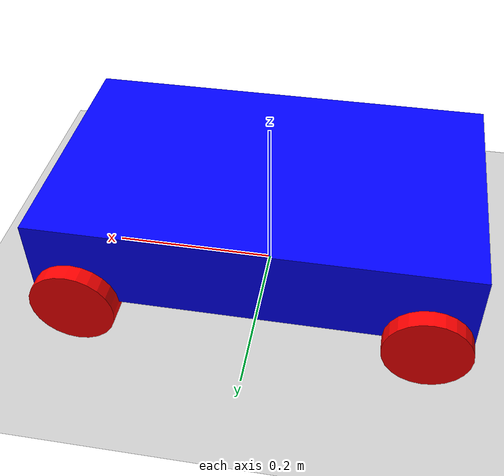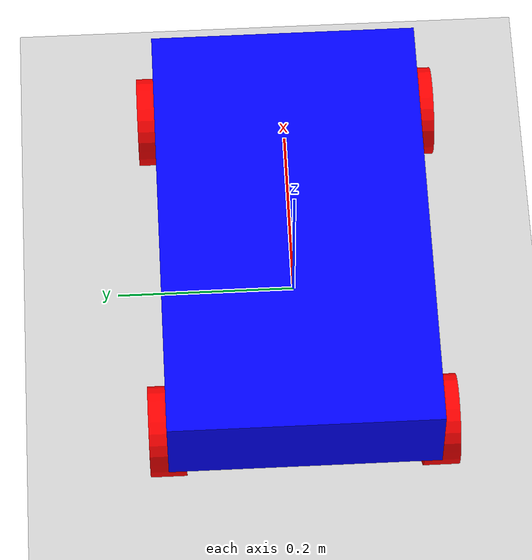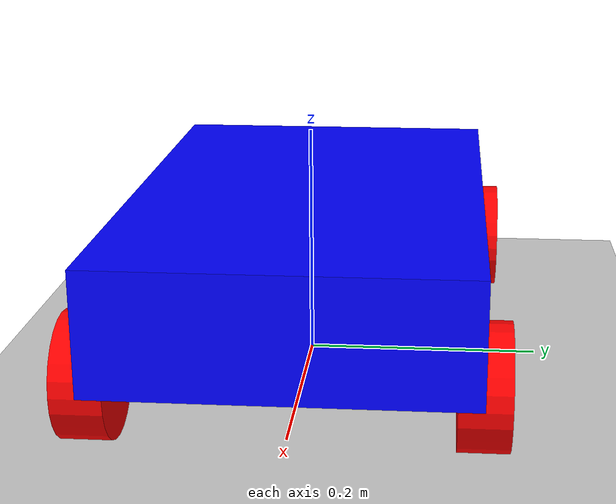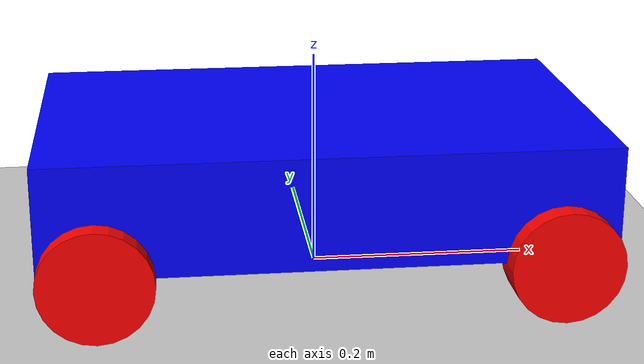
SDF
<?xml version="1.0" ?>
<sdf version="1.7">
    <world name="car_world">
        <physics name="1ms" type="ignored">
            <max_step_size>0.001</max_step_size>
            <real_time_factor>1.0</real_time_factor>
        </physics>

        <plugin
            filename="libignition-gazebo-physics-system.so"
            name="ignition::gazebo::systems::Physics">
        </plugin>
        <plugin
            filename="libignition-gazebo-user-commands-system.so"
            name="ignition::gazebo::systems::UserCommands">
        </plugin>
        <plugin
            filename="libignition-gazebo-scene-broadcaster-system.so"
            name="ignition::gazebo::systems::SceneBroadcaster">
        </plugin>

        <light type="directional" name="sun">
            <cast_shadows>true</cast_shadows>
            <pose>0 0 10 0 0 0</pose>
            <diffuse>0.8 0.8 0.8 1</diffuse>
            <specular>0.2 0.2 0.2 1</specular>
            <attenuation>
                <range>1000</range>
                <constant>0.9</constant>
                <linear>0.01</linear>
                <quadratic>0.001</quadratic>
            </attenuation>
            <direction>-0.5 0.1 -0.9</direction>
        </light>

        <model name="ground_plane">
            <static>true</static>
            <link name="link">
                <collision name="collision">
                <geometry>
                    <plane>
                    <normal>0 0 1</normal>
                    </plane>
                </geometry>
                </collision>
                <visual name="visual">
                <geometry>
                    <plane>
                    <normal>0 0 1</normal>
                    <size>100 100</size>
                    </plane>
                </geometry>
                <material>
                    <ambient>0.8 0.8 0.8 1</ambient>
                    <diffuse>0.8 0.8 0.8 1</diffuse>
                    <specular>0.8 0.8 0.8 1</specular>
                </material>
                </visual>
            </link>
        </model>

        <model name='ackermann_robot' canonical_link='chassis'>

            <link name='chassis'>
                <pose relative_to='__model__'>0 0 0.1 0 0 0</pose>
                <inertial> <!--inertial properties of the link mass, inertia matix-->
                    <mass>1.14395</mass>
                    <inertia>
                        <ixx>0.095329</ixx>
                        <ixy>0</ixy>
                        <ixz>0</ixz>
                        <iyy>0.381317</iyy>
                        <iyz>0</iyz>
                        <izz>0.476646</izz>
                    </inertia>
                </inertial>
                <visual name='visual'>
                    <geometry>
                        <box>
                            <size>0.5 0.3 0.1</size>
                        </box>
                    </geometry>
                    <!--Color of the link-->
                    <material>
                        <ambient>0.0 0.0 1.0 1</ambient>
                        <diffuse>0.0 0.0 1.0 1</diffuse>
                        <specular>0.0 0.0 1.0 1</specular>
                    </material>
                </visual>
                <collision name='collision'>
                    <geometry>
                        <box>
                            <size>0.5 0.3 0.1</size>
                        </box>
                    </geometry>
                </collision>
            </link>

            <!--Front left wheel-->
            <link name='front_left_wheel'>
                <pose relative_to="chassis">0.2 0.15 -0.05 -1.5707 0 0</pose> <!--angles are in radian-->
                <inertial>
                    <mass>1</mass>
                    <inertia>
                        <ixx>0.043333</ixx>
                        <ixy>0</ixy>
                        <ixz>0</ixz>
                        <iyy>0.043333</iyy>
                        <iyz>0</iyz>
                        <izz>0.08</izz>
                    </inertia>
                </inertial>
                <visual name='visual'>
                    <geometry>
                        <cylinder>
                            <radius>0.05</radius>
                            <length>0.04</length>
                        </cylinder>
                    </geometry>
                    <material>
                        <ambient>1.0 0.0 0.0 1</ambient>
                        <diffuse>1.0 0.0 0.0 1</diffuse>
                        <specular>1.0 0.0 0.0 1</specular>
                    </material>
                </visual>
                <collision name='collision'>
                    <geometry>
                        <cylinder>
                            <radius>0.05</radius>
                            <length>0.04</length>
                        </cylinder>
                    </geometry>
                </collision>
            </link>

            <!--Front right wheel-->
            <link name='front_right_wheel'>
                <pose relative_to="chassis">0.2 -0.15 -0.05 -1.5707 0 0</pose> <!--angles are in radian-->
                <inertial>
                    <mass>1</mass>
                    <inertia>
                        <ixx>0.043333</ixx>
                        <ixy>0</ixy>
                        <ixz>0</ixz>
                        <iyy>0.043333</iyy>
                        <iyz>0</iyz>
                        <izz>0.08</izz>
                    </inertia>
                </inertial>
                <visual name='visual'>
                    <geometry>
                        <cylinder>
                            <radius>0.05</radius>
                            <length>0.04</length>
                        </cylinder>
                    </geometry>
                    <material>
                        <ambient>1.0 0.0 0.0 1</ambient>
                        <diffuse>1.0 0.0 0.0 1</diffuse>
                        <specular>1.0 0.0 0.0 1</specular>
                    </material>
                </visual>
                <collision name='collision'>
                    <geometry>
                        <cylinder>
                            <radius>0.05</radius>
                            <length>0.04</length>
                        </cylinder>
                    </geometry>
                </collision>
            </link>

            <!--Rear left wheel-->
            <link name='rear_left_wheel'>
                <pose relative_to="chassis">-0.2 0.15 -0.05 -1.5707 0 0</pose> <!--angles are in radian-->
                <inertial>
                    <mass>1</mass>
                    <inertia>
                        <ixx>0.043333</ixx>
                        <ixy>0</ixy>
                        <ixz>0</ixz>
                        <iyy>0.043333</iyy>
                        <iyz>0</iyz>
                        <izz>0.08</izz>
                    </inertia>
                </inertial>
                <visual name='visual'>
                    <geometry>
                        <cylinder>
                            <radius>0.05</radius>
                            <length>0.04</length>
                        </cylinder>
                    </geometry>
                    <material>
                        <ambient>1.0 0.0 0.0 1</ambient>
                        <diffuse>1.0 0.0 0.0 1</diffuse>
                        <specular>1.0 0.0 0.0 1</specular>
                    </material>
                </visual>
                <collision name='collision'>
                    <geometry>
                        <cylinder>
                            <radius>0.05</radius>
                            <length>0.04</length>
                        </cylinder>
                    </geometry>
                </collision>
            </link>

            <!--Rear right wheel-->
            <link name='rear_right_wheel'>
                <pose relative_to="chassis">-0.2 -0.15 -0.05 -1.5707 0 0</pose> <!--angles are in radian-->
                <inertial>
                    <mass>1</mass>
                    <inertia>
                        <ixx>0.043333</ixx>
                        <ixy>0</ixy>
                        <ixz>0</ixz>
                        <iyy>0.043333</iyy>
                        <iyz>0</iyz>
                        <izz>0.08</izz>
                    </inertia>
                </inertial>
                <visual name='visual'>
                    <geometry>
                        <cylinder>
                            <radius>0.05</radius>
                            <length>0.04</length>
                        </cylinder>
                    </geometry>
                    <material>
                        <ambient>1.0 0.0 0.0 1</ambient>
                        <diffuse>1.0 0.0 0.0 1</diffuse>
                        <specular>1.0 0.0 0.0 1</specular>
                    </material>
                </visual>
                <collision name='collision'>
                    <geometry>
                        <cylinder>
                            <radius>0.05</radius>
                            <length>0.04</length>
                        </cylinder>
                    </geometry>
                </collision>
            </link>

            <!-- Ackermann Steering (front wheels steering mechanism) -->
            <joint name="steering_left" type="revolute">
                <parent>chassis</parent>
                <child>front_left_wheel</child>
                <pose relative_to='front_left_wheel'/>
                <axis>
                    <xyz expressed_in='__model__'>0 0 1</xyz>
                    <limit>
                        <lower>-0.5</lower>
                        <upper>0.5</upper>
                    </limit>
                </axis>
            </joint>

            <joint name="steering_right" type="revolute">
                <parent>chassis</parent>
                <child>front_right_wheel</child>
                <pose relative_to='front_right_wheel'/>
                <axis>
                    <xyz expressed_in='__model__'>0 0 1</xyz>
                    <limit>
                        <lower>-0.5</lower>
                        <upper>0.5</upper>
                    </limit>
                </axis>
            </joint>

            <!-- Rear Wheel Fixed Joints -->
            <joint name="rear_left_wheel_joint" type="revolute">
                <pose relative_to='rear_left_wheel'/>
                <parent>chassis</parent>
                <child>rear_left_wheel</child>
                <axis>
                    <xyz expressed_in='__model__'>0 1 0</xyz>
                    <limit>
                        <lower>-1.79769e+308</lower>    <!--negative infinity-->
                        <upper>1.79769e+308</upper>     <!--positive infinity-->
                    </limit>
                </axis>
            </joint>

            <joint name="rear_right_wheel_joint" type="revolute">
                <pose relative_to='rear_right_wheel'/>
                <parent>chassis</parent>
                <child>rear_right_wheel</child>
                <axis>
                    <xyz expressed_in='__model__'>0 1 0</xyz>
                    <limit>
                        <lower>-1.79769e+308</lower>    <!--negative infinity-->
                        <upper>1.79769e+308</upper>     <!--positive infinity-->
                    </limit>
                </axis>
            </joint>

            <!-- Plugin DiffDrive para as rodas traseiras -->

            <!-- Plugin JointController para controlar as rodas dianteiras -->

            <plugin
                filename="libignition-gazebo-ackermann-drive-system.so"
                name="ignition::gazebo::systems::AckermannDrive">

                <!-- Juntas das rodas controladas pela direção (frontal esquerda e direita) -->
                <steering_left_joint>steering_left</steering_left_joint>
                <steering_right_joint>steering_right</steering_right_joint>

                <!-- Juntas das rodas controladas pela tração (traseira esquerda e direita) -->
                <left_joint>rear_left_wheel_joint</left_joint>
                <right_joint>rear_right_wheel_joint</right_joint>

                <!-- Parâmetros do controle -->
                <wheel_separation>1.2</wheel_separation>       <!-- Distância entre as rodas esquerda e direita -->
                <wheel_base>1.5</wheel_base>                   <!-- Distância entre as rodas dianteiras e traseiras -->
                <wheel_radius>0.2</wheel_radius>               <!-- Raio das rodas -->
                <steering_limit>0.5</steering_limit>           <!-- Limite do ângulo de direção em radianos -->

                <!-- Tópicos ROS para comandos de controle -->
                <topic>cmd_vel</topic>                         <!-- Tópico para comandos de velocidade (linear e angular) -->
                <steering_topic>steering_cmd</steering_topic>  <!-- Tópico para comandos de direção (ângulo de direção) -->
                <odom_topic>odom</odom_topic>                  <!-- Tópico para odometria -->
                </plugin>
        </model>
    </world>
</sdf>
